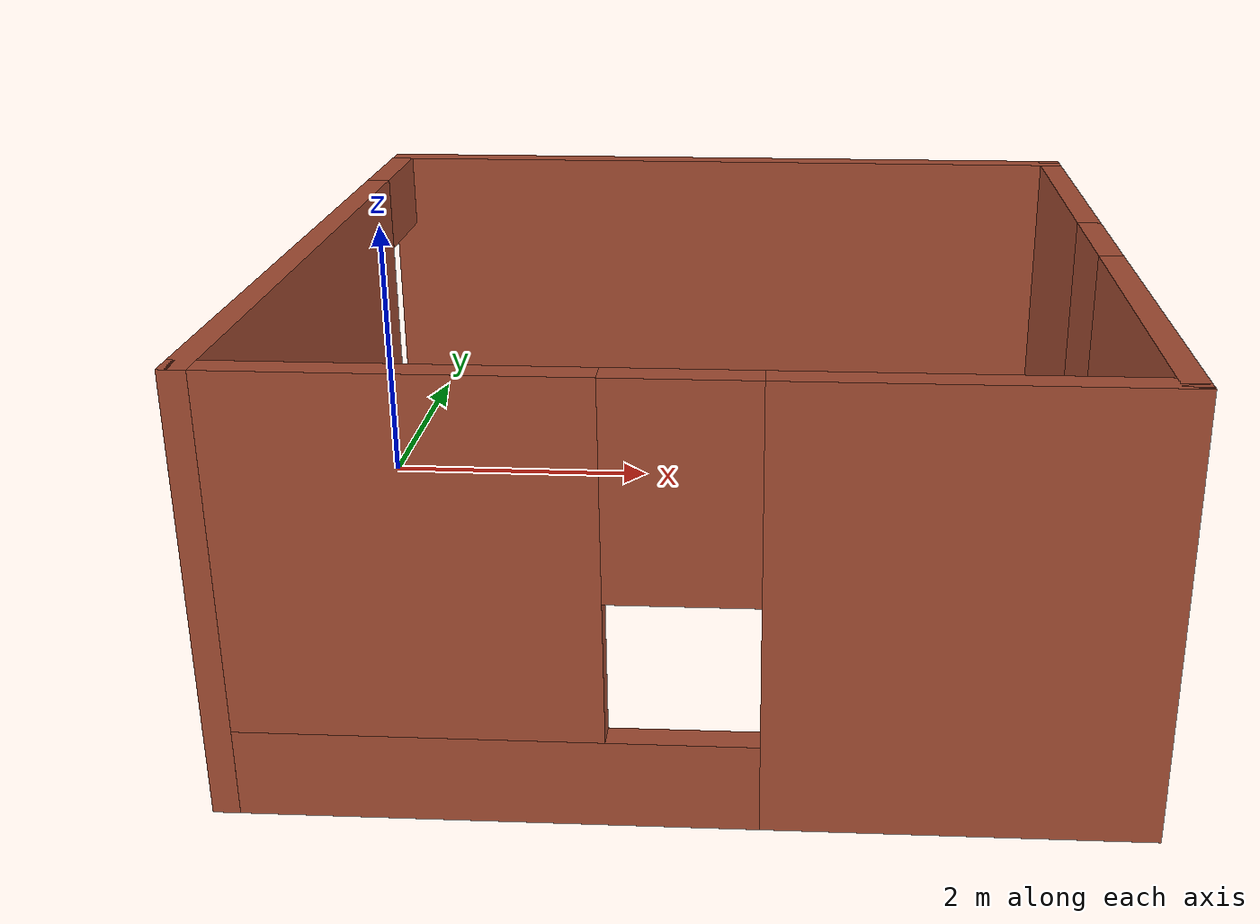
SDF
<?xml version='1.0'?>
<sdf version='1.7'>
  <model name='uproom'>
    <pose>2.5551 -2.23602 0 0 -0 0</pose>
    <link name='Wall_5'>
      <pose>-2.3699 0 0 0 -0 1.5708</pose>
      <visual name='Wall_5_Visual_0'>
        <pose>-0.451004 0 1.25 0 -0 0</pose>
        <geometry>
          <box>
            <size>4.09799 0.15 2.5</size>
          </box>
        </geometry>
        <material>
          <script>
            <uri>file://media/materials/scripts/gazebo.material</uri>
            <name>Gazebo/Bricks</name>
          </script>
          <ambient>1 1 1 1</ambient>
        </material>
        <meta>
          <layer>0</layer>
        </meta>
      </visual>
      <collision name='Wall_5_Collision_0'>
        <geometry>
          <box>
            <size>4.09799 0.15 2.5</size>
          </box>
        </geometry>
        <pose>-0.451004 0 1.25 0 -0 0</pose>
      </collision>
      <visual name='Wall_5_Visual_1'>
        <pose>2.499 0 1.25 0 -0 0</pose>
        <geometry>
          <box>
            <size>0.002007 0.15 2.5</size>
          </box>
        </geometry>
        <material>
          <script>
            <uri>file://media/materials/scripts/gazebo.material</uri>
            <name>Gazebo/Bricks</name>
          </script>
          <ambient>1 1 1 1</ambient>
        </material>
        <meta>
          <layer>0</layer>
        </meta>
      </visual>
      <collision name='Wall_5_Collision_1'>
        <geometry>
          <box>
            <size>0.002007 0.15 2.5</size>
          </box>
        </geometry>
        <pose>2.499 0 1.25 0 -0 0</pose>
      </collision>
      <visual name='Wall_5_Visual_2'>
        <pose>2.04799 0 2.25 0 -0 0</pose>
        <geometry>
          <box>
            <size>0.9 0.15 0.5</size>
          </box>
        </geometry>
        <material>
          <script>
            <uri>file://media/materials/scripts/gazebo.material</uri>
            <name>Gazebo/Bricks</name>
          </script>
          <ambient>1 1 1 1</ambient>
        </material>
        <meta>
          <layer>0</layer>
        </meta>
      </visual>
      <collision name='Wall_5_Collision_2'>
        <geometry>
          <box>
            <size>0.9 0.15 0.5</size>
          </box>
        </geometry>
        <pose>2.04799 0 2.25 0 -0 0</pose>
      </collision>
    </link>
    <link name='Wall_7'>
      <collision name='Wall_7_Collision'>
        <geometry>
          <box>
            <size>5 0.15 2.5</size>
          </box>
        </geometry>
        <pose>0 0 1.25 0 -0 0</pose>
      </collision>
      <visual name='Wall_7_Visual'>
        <pose>0 0 1.25 0 -0 0</pose>
        <geometry>
          <box>
            <size>5 0.15 2.5</size>
          </box>
        </geometry>
        <material>
          <script>
            <uri>file://media/materials/scripts/gazebo.material</uri>
            <name>Gazebo/Bricks</name>
          </script>
          <ambient>1 1 1 1</ambient>
        </material>
        <meta>
          <layer>0</layer>
        </meta>
      </visual>
      <pose>0.055101 2.425 0 0 -0 0</pose>
    </link>
    <link name='Wall_8'>
      <pose>2.4801 0 0 0 -0 -1.5708</pose>
      <visual name='Wall_8_Visual_0'>
        <pose>-1.56224 0 1.25 0 -0 0</pose>
        <geometry>
          <box>
            <size>1.87552 0.15 2.5</size>
          </box>
        </geometry>
        <material>
          <script>
            <uri>file://media/materials/scripts/gazebo.material</uri>
            <name>Gazebo/Bricks</name>
          </script>
          <ambient>1 1 1 1</ambient>
        </material>
        <meta>
          <layer>0</layer>
        </meta>
      </visual>
      <collision name='Wall_8_Collision_0'>
        <geometry>
          <box>
            <size>1.87552 0.15 2.5</size>
          </box>
        </geometry>
        <pose>-1.56224 0 1.25 0 -0 0</pose>
      </collision>
      <visual name='Wall_8_Visual_1'>
        <pose>0.937759 0 0.25 0 -0 0</pose>
        <geometry>
          <box>
            <size>3.12448 0.15 0.5</size>
          </box>
        </geometry>
        <material>
          <script>
            <uri>file://media/materials/scripts/gazebo.material</uri>
            <name>Gazebo/Bricks</name>
          </script>
          <ambient>1 1 1 1</ambient>
        </material>
        <meta>
          <layer>0</layer>
        </meta>
      </visual>
      <collision name='Wall_8_Collision_1'>
        <geometry>
          <box>
            <size>3.12448 0.15 0.5</size>
          </box>
        </geometry>
        <pose>0.937759 0 0.25 0 -0 0</pose>
      </collision>
      <visual name='Wall_8_Visual_2'>
        <pose>1.33776 0 1.5 0 -0 0</pose>
        <geometry>
          <box>
            <size>2.32448 0.15 2</size>
          </box>
        </geometry>
        <material>
          <script>
            <uri>file://media/materials/scripts/gazebo.material</uri>
            <name>Gazebo/Bricks</name>
          </script>
          <ambient>1 1 1 1</ambient>
        </material>
        <meta>
          <layer>0</layer>
        </meta>
      </visual>
      <collision name='Wall_8_Collision_2'>
        <geometry>
          <box>
            <size>2.32448 0.15 2</size>
          </box>
        </geometry>
        <pose>1.33776 0 1.5 0 -0 0</pose>
      </collision>
      <visual name='Wall_8_Visual_3'>
        <pose>-0.224481 0 1.9 0 -0 0</pose>
        <geometry>
          <box>
            <size>0.8 0.15 1.2</size>
          </box>
        </geometry>
        <material>
          <script>
            <uri>file://media/materials/scripts/gazebo.material</uri>
            <name>Gazebo/Bricks</name>
          </script>
          <ambient>1 1 1 1</ambient>
        </material>
        <meta>
          <layer>0</layer>
        </meta>
      </visual>
      <collision name='Wall_8_Collision_3'>
        <geometry>
          <box>
            <size>0.8 0.15 1.2</size>
          </box>
        </geometry>
        <pose>-0.224481 0 1.9 0 -0 0</pose>
      </collision>
    </link>
    <link name='Wall_9'>
      <pose>0.055101 -2.425 0 0 -0 3.14159</pose>
      <visual name='Wall_9_Visual_0'>
        <pose>-1.45751 0 1.25 0 -0 0</pose>
        <geometry>
          <box>
            <size>2.08499 0.15 2.5</size>
          </box>
        </geometry>
        <material>
          <script>
            <uri>file://media/materials/scripts/gazebo.material</uri>
            <name>Gazebo/Bricks</name>
          </script>
          <ambient>1 1 1 1</ambient>
        </material>
        <meta>
          <layer>0</layer>
        </meta>
      </visual>
      <collision name='Wall_9_Collision_0'>
        <geometry>
          <box>
            <size>2.08499 0.15 2.5</size>
          </box>
        </geometry>
        <pose>-1.45751 0 1.25 0 -0 0</pose>
      </collision>
      <visual name='Wall_9_Visual_1'>
        <pose>1.04249 0 0.25 0 -0 0</pose>
        <geometry>
          <box>
            <size>2.91501 0.15 0.5</size>
          </box>
        </geometry>
        <material>
          <script>
            <uri>file://media/materials/scripts/gazebo.material</uri>
            <name>Gazebo/Bricks</name>
          </script>
          <ambient>1 1 1 1</ambient>
        </material>
        <meta>
          <layer>0</layer>
        </meta>
      </visual>
      <collision name='Wall_9_Collision_1'>
        <geometry>
          <box>
            <size>2.91501 0.15 0.5</size>
          </box>
        </geometry>
        <pose>1.04249 0 0.25 0 -0 0</pose>
      </collision>
      <visual name='Wall_9_Visual_2'>
        <pose>1.4425 0 1.5 0 -0 0</pose>
        <geometry>
          <box>
            <size>2.11501 0.15 2</size>
          </box>
        </geometry>
        <material>
          <script>
            <uri>file://media/materials/scripts/gazebo.material</uri>
            <name>Gazebo/Bricks</name>
          </script>
          <ambient>1 1 1 1</ambient>
        </material>
        <meta>
          <layer>0</layer>
        </meta>
      </visual>
      <collision name='Wall_9_Collision_2'>
        <geometry>
          <box>
            <size>2.11501 0.15 2</size>
          </box>
        </geometry>
        <pose>1.4425 0 1.5 0 -0 0</pose>
      </collision>
      <visual name='Wall_9_Visual_3'>
        <pose>-0.01501 0 1.9 0 -0 0</pose>
        <geometry>
          <box>
            <size>0.8 0.15 1.2</size>
          </box>
        </geometry>
        <material>
          <script>
            <uri>file://media/materials/scripts/gazebo.material</uri>
            <name>Gazebo/Bricks</name>
          </script>
          <ambient>1 1 1 1</ambient>
        </material>
        <meta>
          <layer>0</layer>
        </meta>
      </visual>
      <collision name='Wall_9_Collision_3'>
        <geometry>
          <box>
            <size>0.8 0.15 1.2</size>
          </box>
        </geometry>
        <pose>-0.01501 0 1.9 0 -0 0</pose>
      </collision>
    </link>
    <static>1</static>
  </model>
</sdf>
